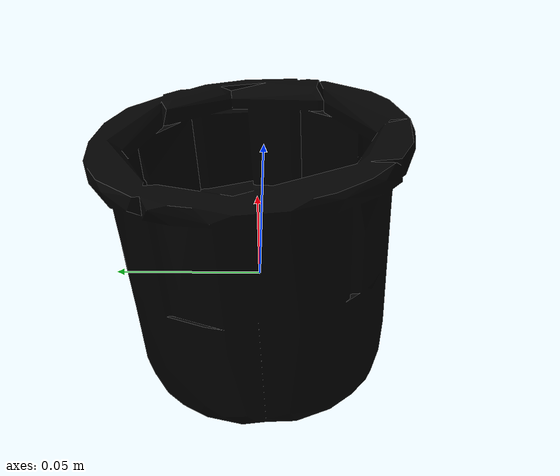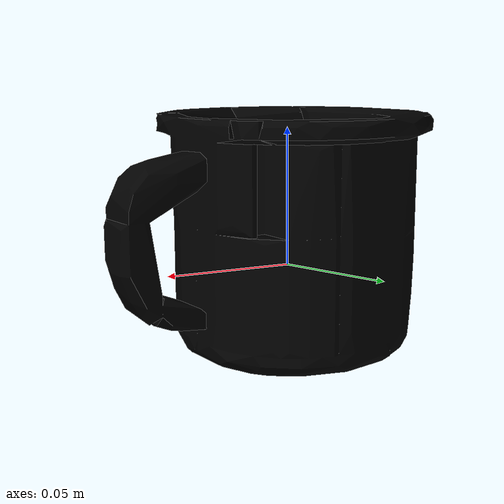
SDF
<?xml version="1.0"?>
<sdf version="1.4">
  <model name="025_mug_textured">
    <pose>0 0 0  0 0 0</pose>
    <link name="body">
      <inertial>
        <mass> 1.0 </mass>
        <pose>0 0 0 0 0 0</pose>
        <inertia>
          <ixx>0.0008600816961084043</ixx>
          <ixy>0.0</ixy>
          <ixz>0.0</ixz>
          <iyy>0.0009779168397470264</iyy>
          <iyz>0.0</iyz>
          <izz>0.0012515192631545697</izz>
        </inertia>
      </inertial>
      <visual name="visual">
        <geometry>
          <mesh>
            <uri>model://025_mug_textured/textured.dae</uri>
          </mesh>
        </geometry>
        <pose>0.017735913911651493 -0.018134349010255017 -0.026653656743845674 -0.07930745952181545 0.06392037353264089 0.029618780327461045</pose>
      </visual>
      <collision name="collision">
        <geometry>
          <mesh>
            <uri>model://025_mug_textured/textured.col.dae</uri>
          </mesh>
        </geometry>
        <max_contacts>10</max_contacts>
        <surface>
          <friction>
            <ode>
              <mu>0.8</mu>
              <mu2>0.8</mu2>
              <slip1>0</slip1>
              <slip2>0</slip2>
            </ode>
            <torsional>
              <ode/>
            </torsional>
          </friction>
          <contact>
            <ode>
              <kp>1000000.0</kp>
              <kd>1.0</kd>
              <max_vel>0.0</max_vel>
            </ode>
          </contact>
        </surface>
        <pose>0.017735913911651493 -0.018134349010255017 -0.026653656743845674 -0.07930745952181545 0.06392037353264089 0.029618780327461045</pose>
      </collision>
    </link>
  </model>
</sdf>
